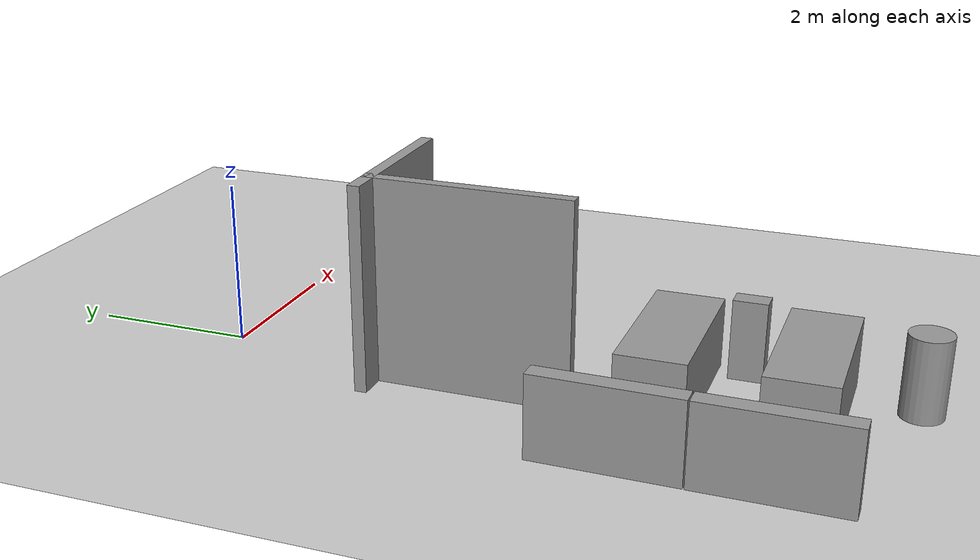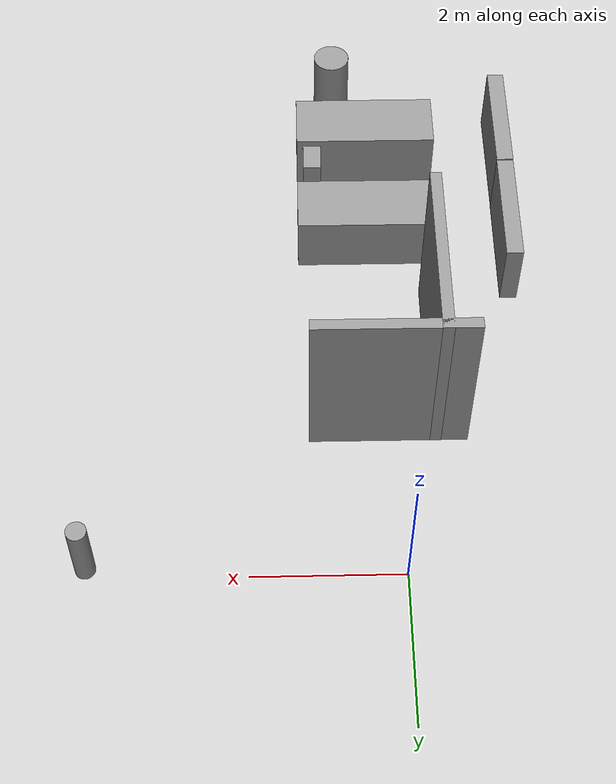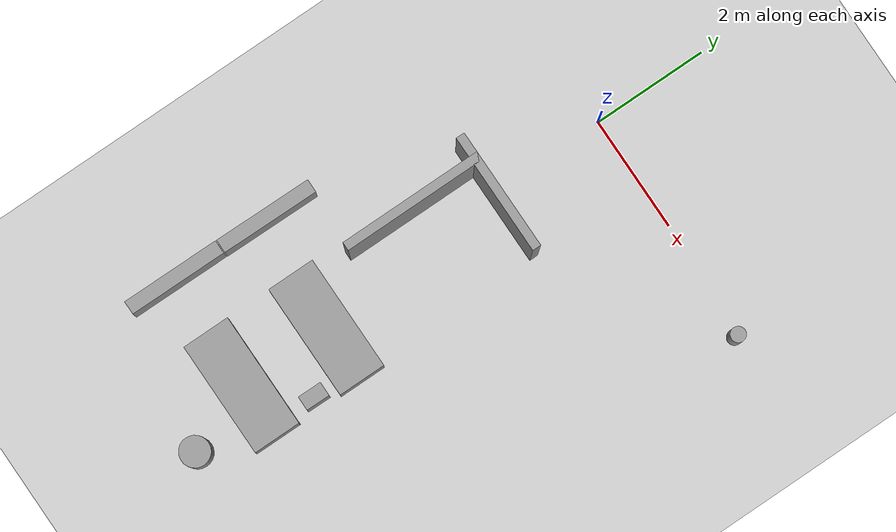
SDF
<sdf version="1.9">
 <world name="default">
  <model name="ground_plane">
   <static>true</static>
   <link name="link">
    <collision name="collision">
     <geometry><plane><normal>0 0 1</normal><size>100 100</size></plane></geometry>
     <surface><friction><ode><mu>100</mu><mu2>50</mu2></ode></friction></surface>
    </collision>
    <visual name="visual">
     <cast_shadows>false</cast_shadows>
     <geometry><plane><normal>0 0 1</normal><size>100 100</size></plane></geometry>
     <material>
      <script><uri>file://media/materials/scripts/gazebo.material</uri><name>Gazebo/Grey</name></script>
     </material>
    </visual>
   </link>
  </model>
  <model name="cma_parede_t">
   <pose>0.15995500000000001 -3.2401599999999999 0 0 0 0</pose>
   <link name="Wall_15">
    <collision name="Wall_15_Collision">
     <geometry><box><size>2.5 0.14999999999999999 2.5</size></box></geometry>
     <pose>0 0 1.25 0 0 0</pose>
    </collision>
    <visual name="Wall_15_Visual">
     <pose>0 0 1.25 0 0 0</pose>
     <geometry><box><size>2.5 0.14999999999999999 2.5</size></box></geometry>
     <material>
      <script><uri>file://media/materials/scripts/gazebo.material</uri><name>Gazebo/Grey</name></script>
      <ambient>1 1 1 1</ambient>
     </material>
    </visual>
    <pose>-0.625 0 0 0 0 1.5708</pose>
   </link>
   <link name="Wall_16">
    <collision name="Wall_16_Collision">
     <geometry><box><size>0.5 0.14999999999999999 2.5</size></box></geometry>
     <pose>0 0 1.25 0 0 0</pose>
    </collision>
    <visual name="Wall_16_Visual">
     <pose>0 0 1.25 0 0 0</pose>
     <geometry><box><size>0.5 0.14999999999999999 2.5</size></box></geometry>
     <material>
      <script><uri>file://media/materials/scripts/gazebo.material</uri><name>Gazebo/Grey</name></script>
      <ambient>1 1 1 1</ambient>
     </material>
    </visual>
    <pose>-0.80000000000000004 1.175 0 0 0 3.1415899999999999</pose>
   </link>
   <link name="Wall_18">
    <collision name="Wall_18_Collision">
     <geometry><box><size>1.75 0.14999999999999999 2.5</size></box></geometry>
     <pose>0 0 1.25 0 0 0</pose>
    </collision>
    <visual name="Wall_18_Visual">
     <pose>0 0 1.25 0 0 0</pose>
     <geometry><box><size>1.75 0.14999999999999999 2.5</size></box></geometry>
     <material>
      <script><uri>file://media/materials/scripts/gazebo.material</uri><name>Gazebo/Grey</name></script>
      <ambient>1 1 1 1</ambient>
     </material>
    </visual>
    <pose>0.17499999999999999 1.175 0 0 0 0</pose>
   </link>
   <static>true</static>
  </model>
  <model name="cma_cama_s">
   <link name="link_0">
    <pose>0 1.9999999999999999e-06 0 0 0 0</pose>
    <inertial>
     <mass>1.44546</mass>
     <inertia>
      <ixx>0.173816</ixx>
      <ixy>0</ixy>
      <ixz>0</ixz>
      <iyy>0.57522300000000004</iyy>
      <iyz>0</iyz>
      <izz>0.56745999999999996</izz>
     </inertia>
    </inertial>
    <visual name="visual">
     <geometry><box><size>2.0053999999999998 0.83022700000000005 0.86816300000000002</size></box></geometry>
     <material>
      <lighting>true</lighting>
      <script><uri>file://media/materials/scripts/gazebo.material</uri><name>Gazebo/Grey</name></script>
      <ambient>0.300000012 0.300000012 0.300000012 1</ambient>
      <diffuse>0.699999988 0.699999988 0.699999988 1</diffuse>
      <specular>0.00999999978 0.00999999978 0.00999999978 1</specular>
      <emissive>0 0 0 1</emissive>
     </material>
    </visual>
    <collision name="collision">
     <geometry><box><size>2.0053999999999998 0.83022700000000005 0.86816300000000002</size></box></geometry>
     <surface>
      <friction>
       <ode><mu>1</mu><mu2>1</mu2><fdir1>0 0 0</fdir1><slip1>0</slip1><slip2>0</slip2></ode>
       <torsional>
        <coefficient>1</coefficient>
        <patch_radius>0</patch_radius>
        <surface_radius>0</surface_radius>
        <use_patch_radius>true</use_patch_radius>
        <ode><slip>0</slip></ode>
       </torsional>
      </friction>
      <bounce><restitution_coefficient>0</restitution_coefficient><threshold>1000000</threshold></bounce>
      <contact>
       <collide_without_contact>false</collide_without_contact>
       <collide_without_contact_bitmask>1</collide_without_contact_bitmask>
       <collide_bitmask>1</collide_bitmask>
       <ode>
        <soft_cfm>0</soft_cfm>
        <soft_erp>0.20000000000000001</soft_erp>
        <kp>10000000000000</kp>
        <kd>1</kd>
        <max_vel>0.01</max_vel>
        <min_depth>0</min_depth>
       </ode>
       <bullet>
        <split_impulse>true</split_impulse>
        <split_impulse_penetration_threshold>-0.01</split_impulse_penetration_threshold>
        <soft_cfm>0</soft_cfm>
        <soft_erp>0.20000000000000001</soft_erp>
        <kp>10000000000000</kp>
        <kd>1</kd>
       </bullet>
      </contact>
     </surface>
    </collision>
   </link>
   <static>false</static>
   <pose>0.31339 -5.4201199999999998 0.43407800000000002 9.9999999999999995e-07 4.0000000000000015e-06 -9.9999999999999995e-07</pose>
  </model>
  <model name="cma_cama_s_0">
   <link name="link_0">
    <pose>0 1.9999999999999999e-06 0 0 0 0</pose>
    <inertial>
     <mass>1.44546</mass>
     <inertia>
      <ixx>0.173816</ixx>
      <ixy>0</ixy>
      <ixz>0</ixz>
      <iyy>0.57522300000000004</iyy>
      <iyz>0</iyz>
      <izz>0.56745999999999996</izz>
     </inertia>
    </inertial>
    <visual name="visual">
     <geometry><box><size>2.0053999999999998 0.83022700000000005 0.86816300000000002</size></box></geometry>
     <material>
      <lighting>true</lighting>
      <script><uri>file://media/materials/scripts/gazebo.material</uri><name>Gazebo/Grey</name></script>
      <ambient>0.300000012 0.300000012 0.300000012 1</ambient>
      <diffuse>0.699999988 0.699999988 0.699999988 1</diffuse>
      <specular>0.00999999978 0.00999999978 0.00999999978 1</specular>
      <emissive>0 0 0 1</emissive>
     </material>
    </visual>
    <collision name="collision">
     <geometry><box><size>2.0053999999999998 0.83022700000000005 0.86816300000000002</size></box></geometry>
     <surface>
      <friction>
       <ode><mu>1</mu><mu2>1</mu2><fdir1>0 0 0</fdir1><slip1>0</slip1><slip2>0</slip2></ode>
       <torsional>
        <coefficient>1</coefficient>
        <patch_radius>0</patch_radius>
        <surface_radius>0</surface_radius>
        <use_patch_radius>true</use_patch_radius>
        <ode><slip>0</slip></ode>
       </torsional>
      </friction>
      <bounce><restitution_coefficient>0</restitution_coefficient><threshold>1000000</threshold></bounce>
      <contact>
       <collide_without_contact>false</collide_without_contact>
       <collide_without_contact_bitmask>1</collide_without_contact_bitmask>
       <collide_bitmask>1</collide_bitmask>
       <ode>
        <soft_cfm>0</soft_cfm>
        <soft_erp>0.20000000000000001</soft_erp>
        <kp>10000000000000</kp>
        <kd>1</kd>
        <max_vel>0.01</max_vel>
        <min_depth>0</min_depth>
       </ode>
       <bullet>
        <split_impulse>true</split_impulse>
        <split_impulse_penetration_threshold>-0.01</split_impulse_penetration_threshold>
        <soft_cfm>0</soft_cfm>
        <soft_erp>0.20000000000000001</soft_erp>
        <kp>10000000000000</kp>
        <kd>1</kd>
       </bullet>
      </contact>
     </surface>
    </collision>
   </link>
   <static>false</static>
   <pose>0.31346600000000002 -7.03078 0.43408200000000002 0 0 0</pose>
  </model>
  <model name="cma_picador">
   <link name="link_2">
    <pose>-0.7258 -1.6910400000000001 0 0 0 0</pose>
    <inertial>
     <mass>0.10473200000000001</mass>
     <inertia>
      <ixx>0.0092790600000000004</ixx>
      <ixy>0</ixy>
      <ixz>0</ixz>
      <iyy>0.010243</iyy>
      <iyz>0</iyz>
      <izz>0.0020667200000000002</izz>
     </inertia>
    </inertial>
    <visual name="visual">
     <geometry><box><size>0.416688 0.25134000000000001 1</size></box></geometry>
     <material>
      <lighting>true</lighting>
      <script><uri>file://media/materials/scripts/gazebo.material</uri><name>Gazebo/Grey</name></script>
      <ambient>0.300000012 0.300000012 0.300000012 1</ambient>
      <diffuse>0.699999988 0.699999988 0.699999988 1</diffuse>
      <specular>0.00999999978 0.00999999978 0.00999999978 1</specular>
      <emissive>0 0 0 1</emissive>
     </material>
    </visual>
    <collision name="collision">
     <geometry><box><size>0.416688 0.25134000000000001 1</size></box></geometry>
     <surface>
      <friction>
       <ode><mu>1</mu><mu2>1</mu2><fdir1>0 0 0</fdir1><slip1>0</slip1><slip2>0</slip2></ode>
       <torsional>
        <coefficient>1</coefficient>
        <patch_radius>0</patch_radius>
        <surface_radius>0</surface_radius>
        <use_patch_radius>true</use_patch_radius>
        <ode><slip>0</slip></ode>
       </torsional>
      </friction>
      <bounce><restitution_coefficient>0</restitution_coefficient><threshold>1000000</threshold></bounce>
      <contact>
       <collide_without_contact>false</collide_without_contact>
       <collide_without_contact_bitmask>1</collide_without_contact_bitmask>
       <collide_bitmask>1</collide_bitmask>
       <ode>
        <soft_cfm>0</soft_cfm>
        <soft_erp>0.20000000000000001</soft_erp>
        <kp>10000000000000</kp>
        <kd>1</kd>
        <max_vel>0.01</max_vel>
        <min_depth>0</min_depth>
       </ode>
       <bullet>
        <split_impulse>true</split_impulse>
        <split_impulse_penetration_threshold>-0.01</split_impulse_penetration_threshold>
        <soft_cfm>0</soft_cfm>
        <soft_erp>0.20000000000000001</soft_erp>
        <kp>10000000000000</kp>
        <kd>1</kd>
       </bullet>
      </contact>
     </surface>
    </collision>
   </link>
   <static>false</static>
   <pose>-0.58513499999999996 -5.4543699999999999 0.50000199999999995 2.0000000000000008e-06 2.0000000000000003e-06 1.56538</pose>
  </model>
  <model name="cma_armario_4">
   <link name="link_0">
    <pose>1.3215699999999999 0.88517800000000002 0.5 0 0 0</pose>
    <inertial>
     <mass>0.40237600000000001</mass>
     <inertia>
      <ixx>0.0353686</ixx>
      <ixy>0</ixy>
      <ixz>0</ixz>
      <iyy>0.13261600000000001</iyy>
      <iyz>0</iyz>
      <izz>0.100922</izz>
     </inertia>
    </inertial>
    <visual name="visual">
     <geometry><box><size>1.7187699999999999 0.234069 1</size></box></geometry>
     <material>
      <lighting>true</lighting>
      <script><uri>file://media/materials/scripts/gazebo.material</uri><name>Gazebo/Grey</name></script>
      <ambient>0.300000012 0.300000012 0.300000012 1</ambient>
      <diffuse>0.699999988 0.699999988 0.699999988 1</diffuse>
      <specular>0.00999999978 0.00999999978 0.00999999978 1</specular>
      <emissive>0 0 0 1</emissive>
     </material>
    </visual>
    <collision name="collision">
     <geometry><box><size>1.7187699999999999 0.234069 1</size></box></geometry>
     <surface>
      <friction>
       <ode><mu>1</mu><mu2>1</mu2><fdir1>0 0 0</fdir1><slip1>0</slip1><slip2>0</slip2></ode>
       <torsional>
        <coefficient>1</coefficient>
        <patch_radius>0</patch_radius>
        <surface_radius>0</surface_radius>
        <use_patch_radius>true</use_patch_radius>
        <ode><slip>0</slip></ode>
       </torsional>
      </friction>
      <bounce><restitution_coefficient>0</restitution_coefficient><threshold>1000000</threshold></bounce>
      <contact>
       <collide_without_contact>false</collide_without_contact>
       <collide_without_contact_bitmask>1</collide_without_contact_bitmask>
       <collide_bitmask>1</collide_bitmask>
       <ode>
        <soft_cfm>0</soft_cfm>
        <soft_erp>0.20000000000000001</soft_erp>
        <kp>10000000000000</kp>
        <kd>1</kd>
        <max_vel>0.01</max_vel>
        <min_depth>0</min_depth>
       </ode>
       <bullet>
        <split_impulse>true</split_impulse>
        <split_impulse_penetration_threshold>-0.01</split_impulse_penetration_threshold>
        <soft_cfm>0</soft_cfm>
        <soft_erp>0.20000000000000001</soft_erp>
        <kp>10000000000000</kp>
        <kd>1</kd>
       </bullet>
      </contact>
     </surface>
    </collision>
   </link>
   <static>false</static>
   <pose>-0.78518600000000005 -6.5470300000000003 0 0 0 1.5622400000000001</pose>
  </model>
  <model name="cma_armario_5">
   <link name="link_0">
    <pose>1.3215699999999999 0.88517800000000002 0.5 0 0 0</pose>
    <inertial>
     <mass>0.40237600000000001</mass>
     <inertia>
      <ixx>0.0353686</ixx>
      <ixy>0</ixy>
      <ixz>0</ixz>
      <iyy>0.13261600000000001</iyy>
      <iyz>0</iyz>
      <izz>0.100922</izz>
     </inertia>
    </inertial>
    <visual name="visual">
     <geometry><box><size>1.7187699999999999 0.234069 1</size></box></geometry>
     <material>
      <lighting>true</lighting>
      <script><uri>file://media/materials/scripts/gazebo.material</uri><name>Gazebo/Grey</name></script>
      <ambient>0.300000012 0.300000012 0.300000012 1</ambient>
      <diffuse>0.699999988 0.699999988 0.699999988 1</diffuse>
      <specular>0.00999999978 0.00999999978 0.00999999978 1</specular>
      <emissive>0 0 0 1</emissive>
     </material>
    </visual>
    <collision name="collision">
     <geometry><box><size>1.7187699999999999 0.234069 1</size></box></geometry>
     <surface>
      <friction>
       <ode><mu>1</mu><mu2>1</mu2><fdir1>0 0 0</fdir1><slip1>0</slip1><slip2>0</slip2></ode>
       <torsional>
        <coefficient>1</coefficient>
        <patch_radius>0</patch_radius>
        <surface_radius>0</surface_radius>
        <use_patch_radius>true</use_patch_radius>
        <ode><slip>0</slip></ode>
       </torsional>
      </friction>
      <bounce><restitution_coefficient>0</restitution_coefficient><threshold>1000000</threshold></bounce>
      <contact>
       <collide_without_contact>false</collide_without_contact>
       <collide_without_contact_bitmask>1</collide_without_contact_bitmask>
       <collide_bitmask>1</collide_bitmask>
       <ode>
        <soft_cfm>0</soft_cfm>
        <soft_erp>0.20000000000000001</soft_erp>
        <kp>10000000000000</kp>
        <kd>1</kd>
        <max_vel>0.01</max_vel>
        <min_depth>0</min_depth>
       </ode>
       <bullet>
        <split_impulse>true</split_impulse>
        <split_impulse_penetration_threshold>-0.01</split_impulse_penetration_threshold>
        <soft_cfm>0</soft_cfm>
        <soft_erp>0.20000000000000001</soft_erp>
        <kp>10000000000000</kp>
        <kd>1</kd>
       </bullet>
      </contact>
     </surface>
    </collision>
   </link>
   <static>false</static>
   <pose>-0.793709 -8.2781900000000004 0 0 0 1.5668799999999998</pose>
  </model>
  <model name="cma_cesto_0">
   <link name="link_1">
    <pose>-0.32965899999999998 -1.55494 0 0 0 0</pose>
    <inertial>
     <mass>0.267897</mass>
     <inertia>
      <ixx>0.026810199999999999</ixx>
      <ixy>0</ixy>
      <ixz>0</ixz>
      <iyy>0.026810199999999999</iyy>
      <iyz>0</iyz>
      <izz>0.0089711099999999992</izz>
     </inertia>
    </inertial>
    <visual name="visual">
     <geometry><cylinder><radius>0.25879200000000002</radius><length>1</length></cylinder></geometry>
     <material>
      <lighting>true</lighting>
      <script><uri>file://media/materials/scripts/gazebo.material</uri><name>Gazebo/Grey</name></script>
      <ambient>0.300000012 0.300000012 0.300000012 1</ambient>
      <diffuse>0.699999988 0.699999988 0.699999988 1</diffuse>
      <specular>0.00999999978 0.00999999978 0.00999999978 1</specular>
      <emissive>0 0 0 1</emissive>
     </material>
    </visual>
    <collision name="collision">
     <geometry><cylinder><radius>0.25879200000000002</radius><length>1</length></cylinder></geometry>
     <surface>
      <friction>
       <ode><mu>1</mu><mu2>1</mu2><fdir1>0 0 0</fdir1><slip1>0</slip1><slip2>0</slip2></ode>
       <torsional>
        <coefficient>1</coefficient>
        <patch_radius>0</patch_radius>
        <surface_radius>0</surface_radius>
        <use_patch_radius>true</use_patch_radius>
        <ode><slip>0</slip></ode>
       </torsional>
      </friction>
      <bounce><restitution_coefficient>0</restitution_coefficient><threshold>1000000</threshold></bounce>
      <contact>
       <collide_without_contact>false</collide_without_contact>
       <collide_without_contact_bitmask>1</collide_without_contact_bitmask>
       <collide_bitmask>1</collide_bitmask>
       <ode>
        <soft_cfm>0</soft_cfm>
        <soft_erp>0.20000000000000001</soft_erp>
        <kp>10000000000000</kp>
        <kd>1</kd>
        <max_vel>0.01</max_vel>
        <min_depth>0</min_depth>
       </ode>
       <bullet>
        <split_impulse>true</split_impulse>
        <split_impulse_penetration_threshold>-0.01</split_impulse_penetration_threshold>
        <soft_cfm>0</soft_cfm>
        <soft_erp>0.20000000000000001</soft_erp>
        <kp>10000000000000</kp>
        <kd>1</kd>
       </bullet>
      </contact>
     </surface>
    </collision>
   </link>
   <static>false</static>
   <pose>1.1020300000000001 -6.65937 0.49999100000000002 0 0 0</pose>
  </model>
  <model name="cma_lixo_4">
   <link name="link_1">
    <pose>0.88296200000000002 1.81586 0.5 0 0 0</pose>
    <inertial>
     <mass>0.068764400000000003</mass>
     <inertia>
      <ixx>0.00602588</ixx>
      <ixy>0</ixy>
      <ixz>0</ixz>
      <iyy>0.00602588</iyy>
      <iyz>0</iyz>
      <izz>0.00059106800000000004</izz>
     </inertia>
    </inertial>
    <visual name="visual">
     <geometry><cylinder><radius>0.13111200000000001</radius><length>1</length></cylinder></geometry>
     <material>
      <lighting>true</lighting>
      <script><uri>file://media/materials/scripts/gazebo.material</uri><name>Gazebo/Grey</name></script>
      <ambient>0.300000012 0.300000012 0.300000012 1</ambient>
      <diffuse>0.699999988 0.699999988 0.699999988 1</diffuse>
      <specular>0.00999999978 0.00999999978 0.00999999978 1</specular>
      <emissive>0 0 0 1</emissive>
     </material>
    </visual>
    <collision name="collision">
     <geometry><cylinder><radius>0.13111200000000001</radius><length>1</length></cylinder></geometry>
     <surface>
      <friction>
       <ode><mu>1</mu><mu2>1</mu2><fdir1>0 0 0</fdir1><slip1>0</slip1><slip2>0</slip2></ode>
       <torsional>
        <coefficient>1</coefficient>
        <patch_radius>0</patch_radius>
        <surface_radius>0</surface_radius>
        <use_patch_radius>true</use_patch_radius>
        <ode><slip>0</slip></ode>
       </torsional>
      </friction>
      <bounce><restitution_coefficient>0</restitution_coefficient><threshold>1000000</threshold></bounce>
      <contact>
       <collide_without_contact>false</collide_without_contact>
       <collide_without_contact_bitmask>1</collide_without_contact_bitmask>
       <collide_bitmask>1</collide_bitmask>
       <ode>
        <soft_cfm>0</soft_cfm>
        <soft_erp>0.20000000000000001</soft_erp>
        <kp>10000000000000</kp>
        <kd>1</kd>
        <max_vel>0.01</max_vel>
        <min_depth>0</min_depth>
       </ode>
       <bullet>
        <split_impulse>true</split_impulse>
        <split_impulse_penetration_threshold>-0.01</split_impulse_penetration_threshold>
        <soft_cfm>0</soft_cfm>
        <soft_erp>0.20000000000000001</soft_erp>
        <kp>10000000000000</kp>
        <kd>1</kd>
       </bullet>
      </contact>
     </surface>
    </collision>
   </link>
   <static>false</static>
   <pose>3.1650999999999998 -1.9552 0 0 0 0</pose>
  </model>
 </world>
</sdf>
